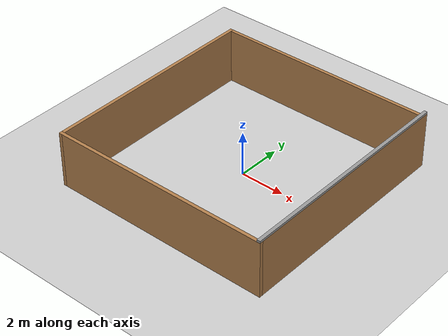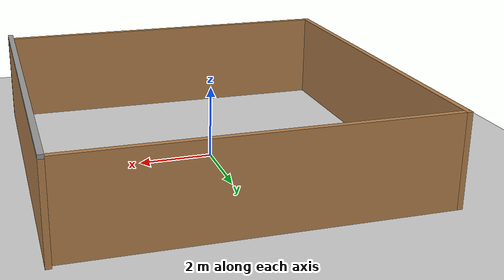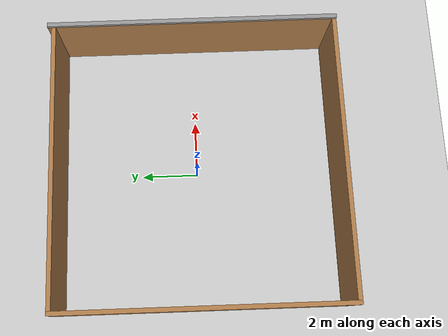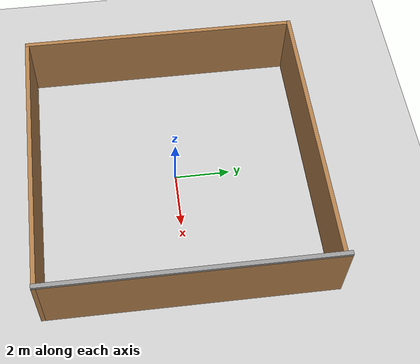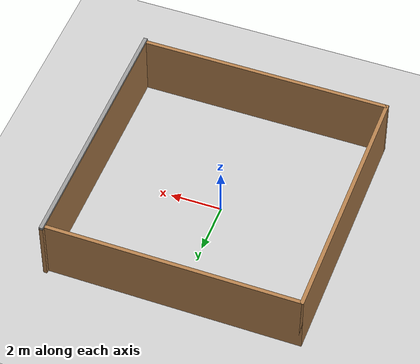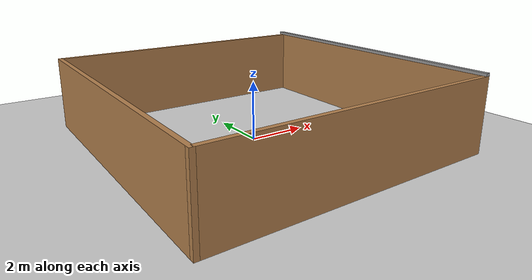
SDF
<sdf version="1.7">
 <world name="default">
  <scene><ambient>0.4 0.4 0.4 1</ambient><background>0.7 0.7 0.7 1</background><shadows>0</shadows></scene>
  <plugin filename="gz-sim-physics-system" name="gz::sim::systems::Physics"/>
  <plugin filename="gz-sim-user-commands-system" name="gz::sim::systems::UserCommands"/>
  <plugin filename="gz-sim-scene-broadcaster-system" name="gz::sim::systems::SceneBroadcaster"/>
  <plugin filename="gz-sim-imu-system" name="gz::sim::systems::Imu"/>
  <plugin filename="gz-sim-sensors-system" name="gz::sim::systems::Sensors">
   <render_engine>ogre2</render_engine>
  </plugin>
  <light name="sun" type="directional">
   <cast_shadows>0</cast_shadows>
   <pose>0 0 10 0 -0 0</pose>
   <diffuse>0.8 0.8 0.8 1</diffuse>
   <specular>0.2 0.2 0.2 1</specular>
   <attenuation>
    <range>1000</range>
    <constant>0.9</constant>
    <linear>0.01</linear>
    <quadratic>0.001</quadratic>
   </attenuation>
   <direction>-0.5 0.1 -0.9</direction>
   <spot><inner_angle>0</inner_angle><outer_angle>0</outer_angle><falloff>0</falloff></spot>
  </light>
  <model name="ground_plane">
   <static>1</static>
   <link name="link">
    <collision name="collision">
     <geometry><plane><normal>0 0 1</normal><size>100 100</size></plane></geometry>
     <surface>
      <contact><collide_bitmask>65535</collide_bitmask></contact>
      <friction><ode><mu>100</mu><mu2>50</mu2></ode></friction>
     </surface>
    </collision>
    <visual name="visual">
     <cast_shadows>0</cast_shadows>
     <geometry><plane><normal>0 0 1</normal><size>100 100</size></plane></geometry>
     <material>
      <script><uri>file://media/materials/scripts/gazebo.material</uri><name>Gazebo/Grey</name></script>
     </material>
    </visual>
   </link>
  </model>
  <physics type="ode">
   <real_time_update_rate>1000</real_time_update_rate>
   <max_step_size>0.001</max_step_size>
   <real_time_factor>1</real_time_factor>
   <ode>
    <solver>
     <type>quick</type>
     <iters>150</iters>
     <precon_iters>0</precon_iters>
     <sor>1.4</sor>
     <use_dynamic_moi_rescaling>1</use_dynamic_moi_rescaling>
    </solver>
    <constraints>
     <cfm>1e-05</cfm>
     <erp>0.2</erp>
     <contact_max_correcting_vel>2000</contact_max_correcting_vel>
     <contact_surface_layer>0.01</contact_surface_layer>
    </constraints>
   </ode>
  </physics>
  <gravity>0 0 -9.8</gravity>
  <magnetic_field>6e-06 2.3e-05 -4.2e-05</magnetic_field>
  <atmosphere type="adiabatic"/>
  <spherical_coordinates>
   <surface_model>EARTH_WGS84</surface_model>
   <latitude_deg>0</latitude_deg>
   <longitude_deg>0</longitude_deg>
   <elevation>0</elevation>
   <heading_deg>0</heading_deg>
  </spherical_coordinates>
  <model name="10x10">
   <pose>0.0855 0.0095 0 0 -0 0</pose>
   <link name="Floor_0">
    <collision name="Floor_0_Collision">
     <geometry><box><size>0.15 10.131 0.1</size></box></geometry>
     <pose>0 0 0.05 0 -0 0</pose>
    </collision>
    <visual name="Floor_0_Visual">
     <pose>0 0 0.05 0 -0 0</pose>
     <geometry><box><size>0.15 10.131 0.1</size></box></geometry>
     <material>
      <script><uri>file://media/materials/scripts/gazebo.material</uri><name>Gazebo/Grey</name></script>
      <ambient>1 1 1 1</ambient>
     </material>
     <meta><layer>1</layer></meta>
    </visual>
    <pose>4.9145 -2.5e-05 2.5 0 -0 0</pose>
   </link>
   <link name="Wall_0">
    <collision name="Wall_0_Collision">
     <geometry><box><size>10.131 0.15 2.5</size></box></geometry>
     <pose>0 0 1.25 0 -0 0</pose>
    </collision>
    <visual name="Wall_0_Visual">
     <pose>0 0 1.25 0 -0 0</pose>
     <geometry><box><size>10.131 0.15 2.5</size></box></geometry>
     <material>
      <script><uri>file://media/materials/scripts/gazebo.material</uri><name>Gazebo/Wood</name></script>
      <ambient>0.996078 0.47451 0.0196078 1</ambient>
     </material>
     <meta><layer>0</layer></meta>
    </visual>
    <pose>4.9145 -0 0 0 -0 -1.5708</pose>
   </link>
   <link name="Wall_11">
    <collision name="Wall_11_Collision">
     <geometry><box><size>10 0.15 2.5</size></box></geometry>
     <pose>0 0 1.25 0 -0 0</pose>
    </collision>
    <visual name="Wall_11_Visual">
     <pose>0 0 1.25 0 -0 0</pose>
     <geometry><box><size>10 0.15 2.5</size></box></geometry>
     <material>
      <script><uri>file://media/materials/scripts/gazebo.material</uri><name>Gazebo/Wood</name></script>
      <ambient>0.996078 0.47451 0.0196078 1</ambient>
     </material>
     <meta><layer>0</layer></meta>
    </visual>
    <pose>-4.9145 -0.0655 0 0 -0 1.5708</pose>
   </link>
   <link name="Wall_13">
    <collision name="Wall_13_Collision">
     <geometry><box><size>9.979 0.15 2.5</size></box></geometry>
     <pose>0 0 1.25 0 -0 0</pose>
    </collision>
    <visual name="Wall_13_Visual">
     <pose>0 0 1.25 0 -0 0</pose>
     <geometry><box><size>9.979 0.15 2.5</size></box></geometry>
     <material>
      <script><uri>file://media/materials/scripts/gazebo.material</uri><name>Gazebo/Wood</name></script>
      <ambient>0.996078 0.47451 0.0196078 1</ambient>
     </material>
     <meta><layer>0</layer></meta>
    </visual>
    <pose>0 4.8595 0 0 -0 0</pose>
   </link>
   <link name="Wall_9">
    <collision name="Wall_9_Collision">
     <geometry><box><size>9.979 0.15 2.5</size></box></geometry>
     <pose>0 0 1.25 0 -0 0</pose>
    </collision>
    <visual name="Wall_9_Visual">
     <pose>0 0 1.25 0 -0 0</pose>
     <geometry><box><size>9.979 0.15 2.5</size></box></geometry>
     <material>
      <script><uri>file://media/materials/scripts/gazebo.material</uri><name>Gazebo/Wood</name></script>
      <ambient>0.996078 0.47451 0.0196078 1</ambient>
     </material>
     <meta><layer>0</layer></meta>
    </visual>
    <pose>0 -4.9905 0 0 -0 3.14159</pose>
   </link>
   <static>1</static>
  </model>
 </world>
</sdf>
